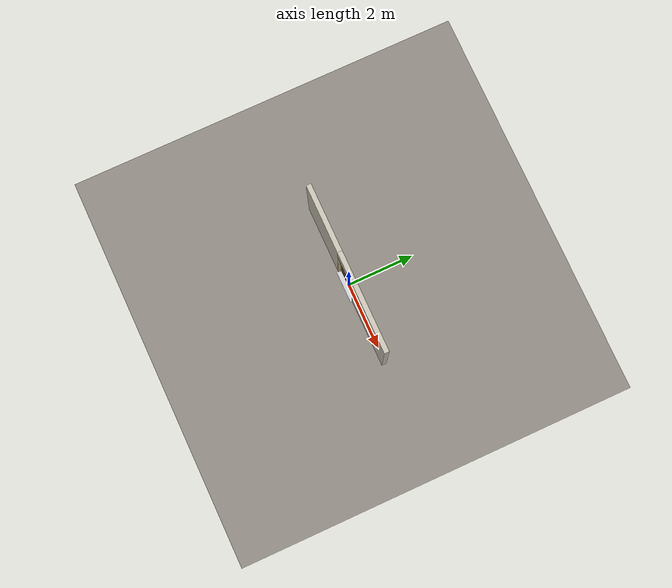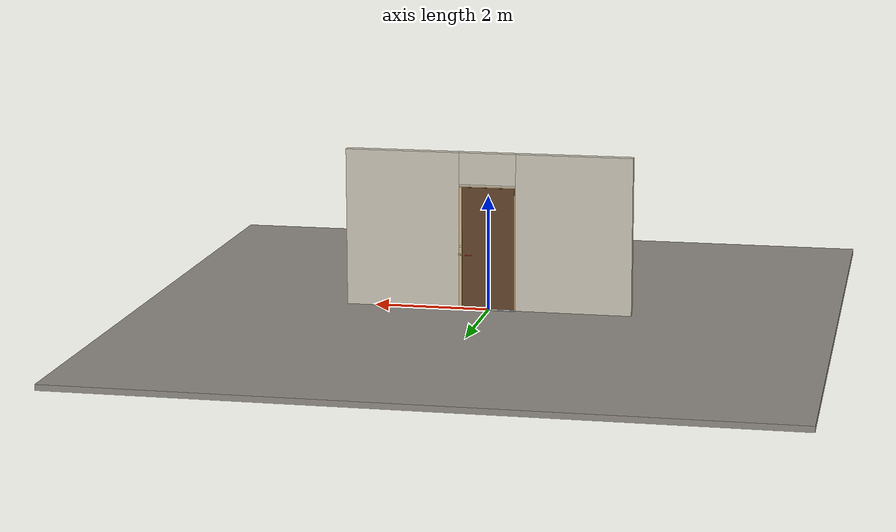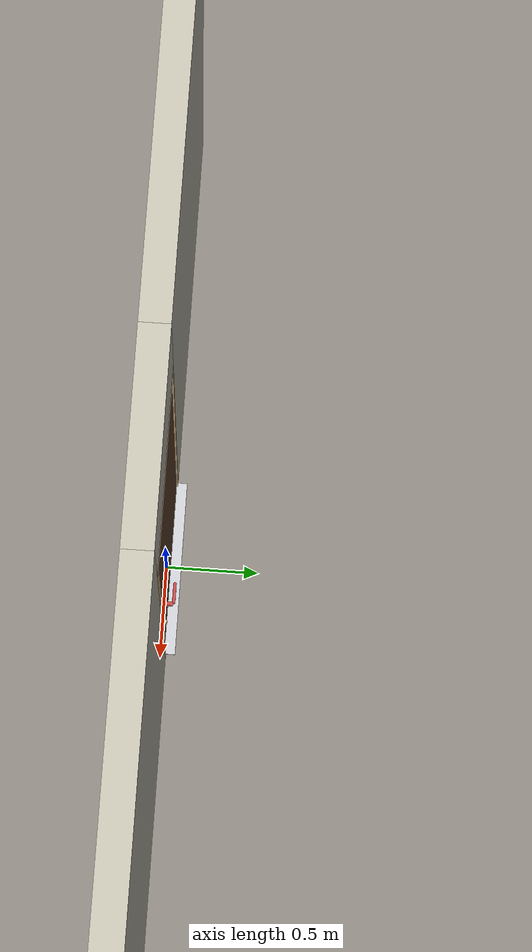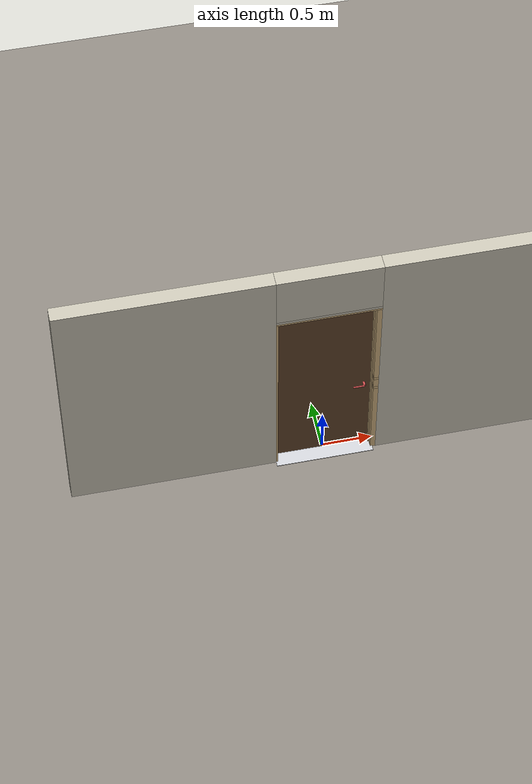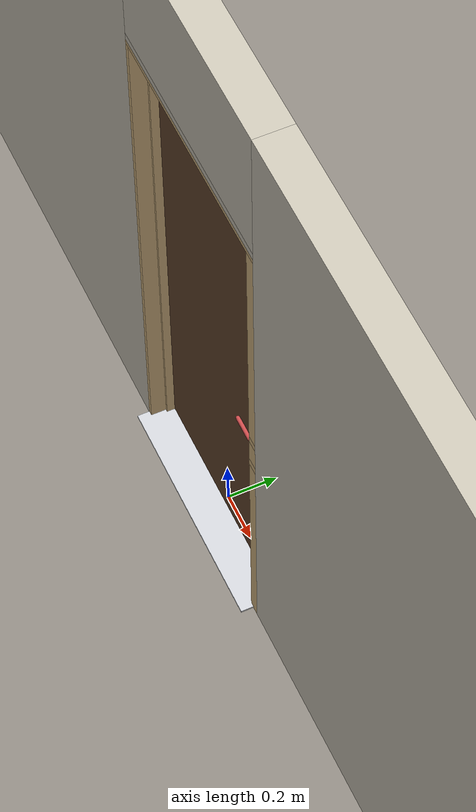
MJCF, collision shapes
<?xml version="1.0" ?>
<mujoco model="db0531_swing_single_minimal">
  <compiler angle="radian" meshdir="../../hardware" texturedir="../../textures" autolimits="true" inertiafromgeom="false"/>
  <option timestep="0.002" integrator="implicitfast" cone="elliptic" impratio="10" noslip_iterations="3">
    <flag multiccd="enable"/>
  </option>
  <size memory="16M"/>
  <default>
    <geom condim="4" solref="0.005 1" solimp="0.95 0.99 0.001"/>
    <joint solreflimit="0.005 1" solimplimit="0.95 0.99 0.001"/>
    <tendon solreflimit="0.005 1"/>
    <equality solref="0.002 1"/>
  </default>
  <visual>
    <headlight ambient="0.4 0.4 0.4" diffuse="0.7 0.7 0.7" specular="0.2 0.2 0.2"/>
    <quality shadowsize="4096"/>
    <map znear="0.01" zfar="60"/>
  </visual>
  <asset>
    <mesh name="lever_748f08efca" file="lever_748f08efca.obj"/>
    <material name="mat_floor" rgba="0.55 0.53 0.5 1" specular="0.2" shininess="0.15" reflectance="0"/>
    <material name="mat_wall" rgba="0.78 0.76 0.7 1" specular="0.2" shininess="0.1" reflectance="0"/>
    <material name="mat_leaf" rgba="0.378 0.261 0.165 1" specular="0.2" shininess="0.5" reflectance="0"/>
    <material name="mat_leaf_panel" rgba="0.348 0.24 0.152 1" specular="0.2" shininess="0.5" reflectance="0"/>
    <material name="mat_hinge" rgba="0.65 0.66 0.68 1" specular="0.74" shininess="0.5" reflectance="0.36"/>
    <material name="mat_op_chrome" rgba="0.9 0.9 0.92 1" specular="0.8" shininess="0.9" reflectance="0.4"/>
    <material name="mat_trim" rgba="0.85 0.66 0.3 1" specular="0.8" shininess="0.75" reflectance="0.4"/>
    <material name="mat_bolt" rgba="0.85 0.66 0.3 1" specular="0.8" shininess="0.75" reflectance="0.4"/>
    <material name="mat_deadbolt" rgba="0.85 0.66 0.3 1" specular="0.8" shininess="0.75" reflectance="0.4"/>
    <material name="mat_frame" rgba="0.82 0.7 0.5 1" specular="0.2" shininess="0.45" reflectance="0"/>
    <material name="mat_threshold" rgba="0.8 0.81 0.83 1" specular="0.8" shininess="0.6" reflectance="0.4"/>
    <material name="mat_peephole" rgba="0.85 0.66 0.3 1" specular="0.8" shininess="0.75" reflectance="0.4"/>
    <material name="mat_bumper_stop" rgba="0.08 0.08 0.08 1" specular="0.2" shininess="0.1" reflectance="0"/>
    <material name="mat_stop_base" rgba="0.9 0.9 0.92 1" specular="0.8" shininess="0.9" reflectance="0.4"/>
    <texture name="skybox" type="skybox" builtin="gradient" rgb1="0.6 0.7 0.85" rgb2="0.9 0.92 0.95" width="256" height="256"/>
  </asset>
  <worldbody>
    <light name="sun" pos="1.5 -2.5 4" dir="-0.3 0.5 -0.8" directional="true" diffuse="0.8 0.8 0.8" specular="0.3 0.3 0.3" castshadow="true"/>
    <light name="fill" pos="-1.5 2.5 3" dir="0.3 -0.5 -0.7" directional="true" diffuse="0.35 0.35 0.4" castshadow="false"/>
    <camera name="robot_view" pos="0 -2.681312 1.812087" xyaxes="1 0 0 0 0.26963 0.962964" fovy="52"/>
    <camera name="far_view" pos="0 2.594313 1.812087" xyaxes="-1 0 0 0 -0.26963 0.962964" fovy="52"/>
    <camera name="iso" pos="2.004737 -2.259262 2.234138" xyaxes="0.741536 0.670913 0 -0.242917 0.268487 0.932151" fovy="46"/>
    <camera name="detail_handle" pos="0.4769 -0.877 1.245" xyaxes="0.97561 0.219512 0 -0.070934 0.315262 0.94635" fovy="38"/>
    <geom name="floor" type="box" size="6 6 0.05" pos="0 0 -0.05" material="mat_floor" group="0" contype="1" conaffinity="1" friction="0.8 0.005 0.0001" density="2400"/>
    <geom name="wall_left" type="box" size="1.01025 0.0725 1.3735" pos="-1.48975 -0.0435 1.3735" material="mat_wall" group="0" contype="1" conaffinity="1" friction="0.6 0.005 0.0001" density="800"/>
    <geom name="wall_right" type="box" size="0.99525 0.0725 1.3735" pos="1.50475 -0.0435 1.3735" material="mat_wall" group="0" contype="1" conaffinity="1" friction="0.6 0.005 0.0001" density="800"/>
    <geom name="wall_header" type="box" size="0.4945 0.0725 0.2755" pos="0.015 -0.0435 2.4715" material="mat_wall" group="0" contype="1" conaffinity="1" friction="0.6 0.005 0.0001" density="800"/>
    <geom name="jamb_hinge" type="box" size="0.0095 0.0725 1.0735" pos="-0.47 -0.0435 1.0735" material="mat_frame" group="0" contype="1" conaffinity="1" friction="0.6 0.005 0.0001" density="400"/>
    <geom name="strike_965_wall_n" type="box" size="0.0245 0.054075 0.0167" pos="0.485 -0.061925 0.965" material="mat_frame" group="0" contype="1" conaffinity="1" friction="0.6 0.005 0.0001" density="400"/>
    <geom name="strike_965_wall_p" type="box" size="0.0245 0.008 0.0167" pos="0.485 0.01585 0.965" material="mat_frame" group="0" contype="1" conaffinity="1" friction="0.6 0.005 0.0001" density="400"/>
    <geom name="strike_965_ramp" type="box" size="0.0245 0.01649 0.0167" pos="0.489636 0.028673 0.965" quat="0.977148 0 0 -0.212558" material="mat_frame" group="0" contype="1" conaffinity="1" friction="0.12 0.005 0.0001" density="400"/>
    <geom name="strike_965_back" type="box" size="0.01615 0.00785 0.0167" pos="0.49335 0 0.965" material="mat_frame" group="0" contype="1" conaffinity="1" friction="0.6 0.005 0.0001" density="400"/>
    <geom name="strike_1105_wall_n" type="box" size="0.0245 0.05325 0.0155" pos="0.485 -0.06275 1.105" material="mat_frame" group="0" contype="1" conaffinity="1" friction="0.6 0.005 0.0001" density="400"/>
    <geom name="strike_1105_wall_p" type="box" size="0.0245 0.00975 0.0155" pos="0.485 0.01925 1.105" material="mat_frame" group="0" contype="1" conaffinity="1" friction="0.6 0.005 0.0001" density="400"/>
    <geom name="strike_1105_back" type="box" size="0.0098 0.0095 0.0155" pos="0.4997 0 1.105" material="mat_frame" group="0" contype="1" conaffinity="1" friction="0.6 0.005 0.0001" density="400"/>
    <geom name="jamb_strike_0" type="box" size="0.0245 0.0725 0.47415" pos="0.485 -0.0435 0.47415" material="mat_frame" group="0" contype="1" conaffinity="1" friction="0.6 0.005 0.0001" density="400"/>
    <geom name="jamb_strike_1" type="box" size="0.0245 0.0725 0.0539" pos="0.485 -0.0435 1.0356" material="mat_frame" group="0" contype="1" conaffinity="1" friction="0.6 0.005 0.0001" density="400"/>
    <geom name="jamb_strike_2" type="box" size="0.0245 0.0725 0.51325" pos="0.485 -0.0435 1.63375" material="mat_frame" group="0" contype="1" conaffinity="1" friction="0.6 0.005 0.0001" density="400"/>
    <geom name="jamb_head" type="box" size="0.4945 0.0725 0.0095" pos="0.015 -0.0435 2.1565" material="mat_frame" group="0" contype="1" conaffinity="1" friction="0.6 0.005 0.0001" density="400"/>
    <geom name="head_stud" type="box" size="0.4945 0.0725 0.015" pos="0.015 -0.0435 2.181" material="mat_wall" group="0" contype="1" conaffinity="1" friction="0.6 0.005 0.0001" density="500"/>
    <geom name="stop_hinge" type="box" size="0.0055 0.016 1.0735" pos="-0.455 -0.0385 1.0735" material="mat_frame" group="0" contype="1" conaffinity="1" friction="0.6 0.005 0.0001" density="400"/>
    <geom name="stop_strike" type="box" size="0.0055 0.016 1.0735" pos="0.455 -0.0385 1.0735" material="mat_frame" group="0" contype="1" conaffinity="1" friction="0.6 0.005 0.0001" density="400"/>
    <geom name="stop_head" type="box" size="0.4605 0.016 0.0055" pos="0 -0.0385 2.1415" material="mat_frame" group="0" contype="1" conaffinity="1" friction="0.6 0.005 0.0001" density="400"/>
    <geom name="threshold" type="box" size="0.4795 0.1225 0.004" pos="0 -0.0435 0.004" material="mat_threshold" group="0" contype="1" conaffinity="1" friction="0.6 0.005 0.0001" density="2700"/>
    <site name="approach_point" pos="0 -1.5 0" quat="1 0 0 0" size="0.05" rgba="0.2 0.9 0.2 0.5" group="4"/>
    <site name="goal_point" pos="0 1.5 0" quat="1 0 0 0" size="0.05" rgba="0.2 0.9 0.2 0.5" group="4"/>
    <site name="door_plane_center" pos="0 0 1.0735" quat="1 0 0 0" size="0.02" rgba="0.2 0.9 0.2 0.5" group="4"/>
    <body name="leaf" pos="-0.4605 0 0">
      <inertial pos="0.46 0 1.076" mass="60.808138" quat="-0.5 0.5 0.5 0.5" diaginertia="4.243049962 23.086275667 27.309704869"/>
      <joint name="leaf_hinge" type="hinge" axis="0 0 1" pos="0.003 0.029 0" limited="true" range="0 1.570796" damping="0.318966" frictionloss="1.243316" armature="0.02"/>
      <geom name="leaf_slab" type="box" size="0.457 0.022 1.067" pos="0.46 0 1.076" material="mat_leaf" group="0" contype="1" conaffinity="1" friction="0.4 0.005 0.0001" density="1"/>
      <site name="leaf_edge_mid" pos="0.917 0 1.067" quat="1 0 0 0" size="0.02" rgba="0.2 0.9 0.2 0.5" group="4"/>
      <body name="leaf_handle" pos="0.847 0 0.965">
        <inertial pos="-0.025809 0 0" mass="0.794529" quat="0 0.707107 0.707107 0" diaginertia="0.001153119 0.003205607 0.004222855"/>
        <joint name="leaf_handle_hinge" type="hinge" axis="0 -1 0" limited="true" range="0 0.87" damping="0.205085" frictionloss="0.04" stiffness="0.9" springref="-0.444444" armature="0.01"/>
        <geom name="leaf_handle_lever_n" type="mesh" mesh="lever_748f08efca" pos="0 -0.022 0" quat="0.707107 0.707107 0 0" material="mat_op_chrome" group="1" contype="0" conaffinity="0" density="3000"/>
        <geom name="leaf_handle_lever_col_n" type="capsule" size="0.008 0.048" pos="-0.056 -0.077 0" quat="0.707107 0 -0.707107 0" material="mat_op_chrome" group="3" contype="1" conaffinity="1" rgba="0.8 0.3 0.3 0.25" friction="0.7 0.01 0.0001" density="3000"/>
        <geom name="leaf_handle_hub_col_n" type="cylinder" size="0.012 0.022" pos="0 -0.052 0" quat="0.707107 -0.707107 0 0" material="mat_op_chrome" group="3" contype="1" conaffinity="1" rgba="0.8 0.3 0.3 0.25" friction="0.6 0.005 0.0001" density="3000"/>
        <geom name="leaf_handle_lever_p" type="mesh" mesh="lever_748f08efca" pos="0 0.022 0" quat="-0.707107 0.707107 0 0" material="mat_op_chrome" group="1" contype="0" conaffinity="0" density="3000"/>
        <geom name="leaf_handle_lever_col_p" type="capsule" size="0.008 0.048" pos="-0.056 0.077 0" quat="0.707107 0 -0.707107 0" material="mat_op_chrome" group="3" contype="1" conaffinity="1" rgba="0.8 0.3 0.3 0.25" friction="0.7 0.01 0.0001" density="3000"/>
        <geom name="leaf_handle_hub_col_p" type="cylinder" size="0.012 0.022" pos="0 0.052 0" quat="0.707107 -0.707107 0 0" material="mat_op_chrome" group="3" contype="1" conaffinity="1" rgba="0.8 0.3 0.3 0.25" friction="0.6 0.005 0.0001" density="3000"/>
        <site name="leaf_handle_grip_n" pos="-0.0896 -0.077 0" quat="1 0 0 0" size="0.012" rgba="0.2 0.9 0.2 0.5" group="4"/>
        <site name="leaf_handle_grip_p" pos="-0.0896 0.077 0" quat="1 0 0 0" size="0.012" rgba="0.2 0.9 0.2 0.5" group="4"/>
      </body>
      <body name="leaf_latch_bolt" pos="0.917 0 0.965">
        <inertial pos="-0.00865 0 0" mass="0.041419" quat="0.92388 -0.382683 0 0" diaginertia="0.000000798 0.000005598 0.000005598"/>
        <joint name="leaf_latch_bolt_slide" type="slide" axis="-1 0 0" limited="true" range="0 0.0127" damping="2" frictionloss="0.3" stiffness="300" springref="-0.008333" armature="0.1"/>
        <geom name="leaf_latch_bolt_capsule" type="capsule" size="0.00635 0.015" pos="-0.00865 0 0" quat="0.707107 0 0.707107 0" material="mat_bolt" group="0" contype="1" conaffinity="1" friction="0.2 0.005 0.0001" density="8500"/>
      </body>
    </body>
  </worldbody>
  <tendon>
    <fixed name="leaf_latch_bolt_coupling" limited="true" range="0 10">
      <joint joint="leaf_latch_bolt_slide" coef="1"/>
      <joint joint="leaf_handle_hinge" coef="-0.016076"/>
    </fixed>
  </tendon>
  <sensor>
    <jointpos name="leaf_hinge_pos" joint="leaf_hinge"/>
    <jointvel name="leaf_hinge_vel" joint="leaf_hinge"/>
    <jointpos name="leaf_handle_hinge_pos" joint="leaf_handle_hinge"/>
    <jointvel name="leaf_handle_hinge_vel" joint="leaf_handle_hinge"/>
    <jointpos name="leaf_latch_bolt_slide_pos" joint="leaf_latch_bolt_slide"/>
    <jointvel name="leaf_latch_bolt_slide_vel" joint="leaf_latch_bolt_slide"/>
  </sensor>
</mujoco>
